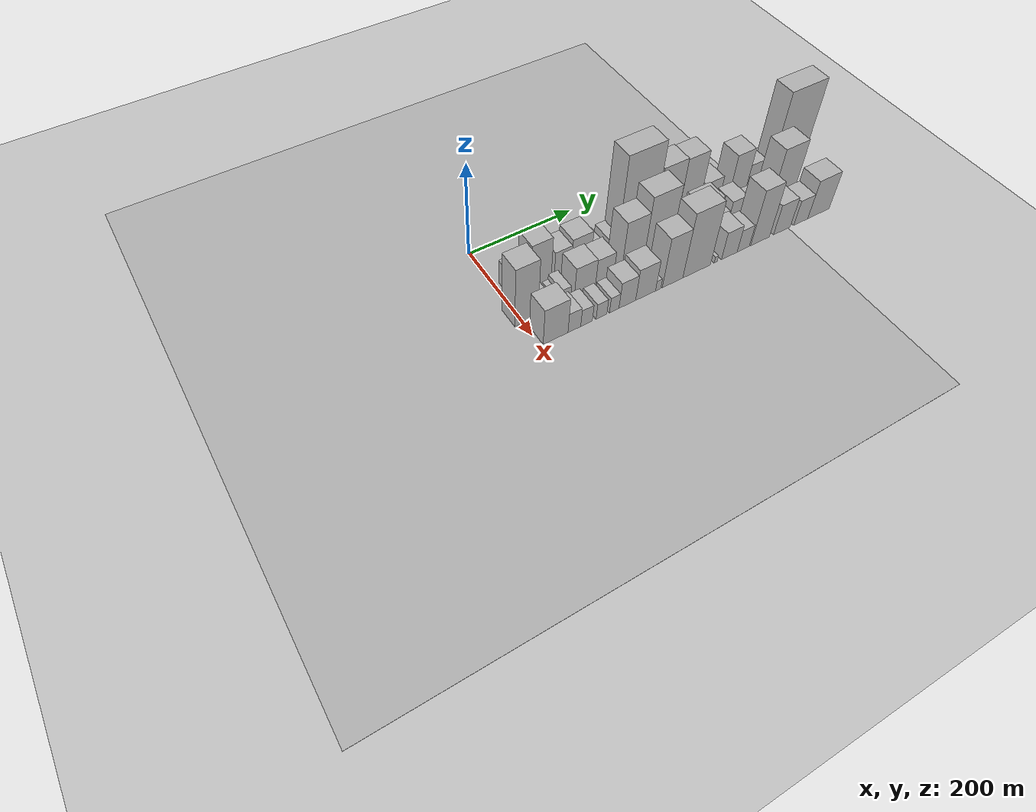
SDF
<sdf version="1.6">
 <world name="default">
  <include><name>ground_plane_1</name><uri>model://HANNAS_ground_plane</uri></include>
  <include>
   <name>ground_plane_2</name>
   <uri>model://HANNAS_ground_plane</uri>
   <pose>100 0 0  0 0 0</pose>
  </include>
  <model name="building_18">
   <static>1</static>
   <pose>100.0000 25.5710 0 0.000000 0.000000 0.000000</pose>
   <link name="link">
    <pose>0 0 27.00 0 0 0</pose>
    <collision name="collision"><geometry><box><size>40.0000 31.5603 54.0000</size></box></geometry></collision>
    <visual name="visual">
     <cast_shadows>0</cast_shadows>
     <geometry><box><size>40.0000 31.5603 54.0000</size></box></geometry>
     <material>
      <script>
       <uri>model://HANNAS_wall/materials/scripts</uri>
       <uri>model://HANNAS_wall/materials/textures</uri>
       <name>vrc/HANNAS_wall</name>
      </script>
     </material>
    </visual>
   </link>
  </model>
  <model name="building_19">
   <static>1</static>
   <pose>100.0000 65.7155 0 0.000000 0.000000 0.000000</pose>
   <link name="link">
    <pose>0 0 51.00 0 0 0</pose>
    <collision name="collision"><geometry><box><size>40.0000 38.7289 102.0000</size></box></geometry></collision>
    <visual name="visual">
     <cast_shadows>0</cast_shadows>
     <geometry><box><size>40.0000 38.7289 102.0000</size></box></geometry>
     <material>
      <script>
       <uri>model://HANNAS_wall/materials/scripts</uri>
       <uri>model://HANNAS_wall/materials/textures</uri>
       <name>vrc/HANNAS_wall</name>
      </script>
     </material>
    </visual>
   </link>
  </model>
  <model name="building_20">
   <static>1</static>
   <pose>100.0000 107.3781 0 0.000000 0.000000 0.000000</pose>
   <link name="link">
    <pose>0 0 31.50 0 0 0</pose>
    <collision name="collision"><geometry><box><size>40.0000 32.5962 63.0000</size></box></geometry></collision>
    <visual name="visual">
     <cast_shadows>0</cast_shadows>
     <geometry><box><size>40.0000 32.5962 63.0000</size></box></geometry>
     <material>
      <script>
       <uri>model://HANNAS_wall/materials/scripts</uri>
       <uri>model://HANNAS_wall/materials/textures</uri>
       <name>vrc/HANNAS_wall</name>
      </script>
     </material>
    </visual>
   </link>
  </model>
  <model name="building_21">
   <static>1</static>
   <pose>100.0000 143.3019 0 0.000000 0.000000 0.000000</pose>
   <link name="link">
    <pose>0 0 37.50 0 0 0</pose>
    <collision name="collision"><geometry><box><size>40.0000 39.2515 75.0000</size></box></geometry></collision>
    <visual name="visual">
     <cast_shadows>0</cast_shadows>
     <geometry><box><size>40.0000 39.2515 75.0000</size></box></geometry>
     <material>
      <script>
       <uri>model://HANNAS_wall/materials/scripts</uri>
       <uri>model://HANNAS_wall/materials/textures</uri>
       <name>vrc/HANNAS_wall</name>
      </script>
     </material>
    </visual>
   </link>
  </model>
  <model name="building_22">
   <static>1</static>
   <pose>100.0000 177.2840 0 0.000000 0.000000 0.000000</pose>
   <link name="link">
    <pose>0 0 18.00 0 0 0</pose>
    <collision name="collision"><geometry><box><size>40.0000 20.7128 36.0000</size></box></geometry></collision>
    <visual name="visual">
     <cast_shadows>0</cast_shadows>
     <geometry><box><size>40.0000 20.7128 36.0000</size></box></geometry>
     <material>
      <script>
       <uri>model://HANNAS_wall/materials/scripts</uri>
       <uri>model://HANNAS_wall/materials/textures</uri>
       <name>vrc/HANNAS_wall</name>
      </script>
     </material>
    </visual>
   </link>
  </model>
  <model name="building_23">
   <static>1</static>
   <pose>100.0000 205.4724 0 0.000000 0.000000 0.000000</pose>
   <link name="link">
    <pose>0 0 19.50 0 0 0</pose>
    <collision name="collision"><geometry><box><size>40.0000 19.6639 39.0000</size></box></geometry></collision>
    <visual name="visual">
     <cast_shadows>0</cast_shadows>
     <geometry><box><size>40.0000 19.6639 39.0000</size></box></geometry>
     <material>
      <script>
       <uri>model://HANNAS_wall/materials/scripts</uri>
       <uri>model://HANNAS_wall/materials/textures</uri>
       <name>vrc/HANNAS_wall</name>
      </script>
     </material>
    </visual>
   </link>
  </model>
  <model name="building_24">
   <static>1</static>
   <pose>100.0000 251.9849 0 0.000000 0.000000 0.000000</pose>
   <link name="link">
    <pose>0 0 105.00 0 0 0</pose>
    <collision name="collision"><geometry><box><size>40.0000 73.3611 210.0000</size></box></geometry></collision>
    <visual name="visual">
     <cast_shadows>0</cast_shadows>
     <geometry><box><size>40.0000 73.3611 210.0000</size></box></geometry>
     <material>
      <script>
       <uri>model://HANNAS_wall/materials/scripts</uri>
       <uri>model://HANNAS_wall/materials/textures</uri>
       <name>vrc/HANNAS_wall</name>
      </script>
     </material>
    </visual>
   </link>
  </model>
  <model name="building_25">
   <static>1</static>
   <pose>100.0000 315.9877 0 0.000000 0.000000 0.000000</pose>
   <link name="link">
    <pose>0 0 75.00 0 0 0</pose>
    <collision name="collision"><geometry><box><size>40.0000 48.6444 150.0000</size></box></geometry></collision>
    <visual name="visual">
     <cast_shadows>0</cast_shadows>
     <geometry><box><size>40.0000 48.6444 150.0000</size></box></geometry>
     <material>
      <script>
       <uri>model://HANNAS_wall/materials/scripts</uri>
       <uri>model://HANNAS_wall/materials/textures</uri>
       <name>vrc/HANNAS_wall</name>
      </script>
     </material>
    </visual>
   </link>
  </model>
  <model name="building_26">
   <static>1</static>
   <pose>100.0000 362.5225 0 0.000000 0.000000 0.000000</pose>
   <link name="link">
    <pose>0 0 73.50 0 0 0</pose>
    <collision name="collision"><geometry><box><size>40.0000 44.4252 147.0000</size></box></geometry></collision>
    <visual name="visual">
     <cast_shadows>0</cast_shadows>
     <geometry><box><size>40.0000 44.4252 147.0000</size></box></geometry>
     <material>
      <script>
       <uri>model://HANNAS_wall/materials/scripts</uri>
       <uri>model://HANNAS_wall/materials/textures</uri>
       <name>vrc/HANNAS_wall</name>
      </script>
     </material>
    </visual>
   </link>
  </model>
  <model name="building_27">
   <static>1</static>
   <pose>100.0000 388.2325 0 0.000000 0.000000 0.000000</pose>
   <link name="link">
    <pose>0 0 7.50 0 0 0</pose>
    <collision name="collision"><geometry><box><size>40.0000 6.9949 15.0000</size></box></geometry></collision>
    <visual name="visual">
     <cast_shadows>0</cast_shadows>
     <geometry><box><size>40.0000 6.9949 15.0000</size></box></geometry>
     <material>
      <script>
       <uri>model://HANNAS_wall/materials/scripts</uri>
       <uri>model://HANNAS_wall/materials/textures</uri>
       <name>vrc/HANNAS_wall</name>
      </script>
     </material>
    </visual>
   </link>
  </model>
  <model name="building_28">
   <static>1</static>
   <pose>100.0000 411.1243 0 0.000000 0.000000 0.000000</pose>
   <link name="link">
    <pose>0 0 34.50 0 0 0</pose>
    <collision name="collision"><geometry><box><size>40.0000 38.7887 69.0000</size></box></geometry></collision>
    <visual name="visual">
     <cast_shadows>0</cast_shadows>
     <geometry><box><size>40.0000 38.7887 69.0000</size></box></geometry>
     <material>
      <script>
       <uri>model://HANNAS_wall/materials/scripts</uri>
       <uri>model://HANNAS_wall/materials/textures</uri>
       <name>vrc/HANNAS_wall</name>
      </script>
     </material>
    </visual>
   </link>
  </model>
  <model name="building_29">
   <static>1</static>
   <pose>100.0000 446.5157 0 0.000000 0.000000 0.000000</pose>
   <link name="link">
    <pose>0 0 12.00 0 0 0</pose>
    <collision name="collision"><geometry><box><size>40.0000 11.9940 24.0000</size></box></geometry></collision>
    <visual name="visual">
     <cast_shadows>0</cast_shadows>
     <geometry><box><size>40.0000 11.9940 24.0000</size></box></geometry>
     <material>
      <script>
       <uri>model://HANNAS_wall/materials/scripts</uri>
       <uri>model://HANNAS_wall/materials/textures</uri>
       <name>vrc/HANNAS_wall</name>
      </script>
     </material>
    </visual>
   </link>
  </model>
  <model name="building_30">
   <static>1</static>
   <pose>100.0000 471.8779 0 0.000000 0.000000 0.000000</pose>
   <link name="link">
    <pose>0 0 52.50 0 0 0</pose>
    <collision name="collision"><geometry><box><size>40.0000 38.7305 105.0000</size></box></geometry></collision>
    <visual name="visual">
     <cast_shadows>0</cast_shadows>
     <geometry><box><size>40.0000 38.7305 105.0000</size></box></geometry>
     <material>
      <script>
       <uri>model://HANNAS_wall/materials/scripts</uri>
       <uri>model://HANNAS_wall/materials/textures</uri>
       <name>vrc/HANNAS_wall</name>
      </script>
     </material>
    </visual>
   </link>
  </model>
  <model name="building_31">
   <static>1</static>
   <pose>100.0000 507.8915 0 0.000000 0.000000 0.000000</pose>
   <link name="link">
    <pose>0 0 33.00 0 0 0</pose>
    <collision name="collision"><geometry><box><size>40.0000 33.2967 66.0000</size></box></geometry></collision>
    <visual name="visual">
     <cast_shadows>0</cast_shadows>
     <geometry><box><size>40.0000 33.2967 66.0000</size></box></geometry>
     <material>
      <script>
       <uri>model://HANNAS_wall/materials/scripts</uri>
       <uri>model://HANNAS_wall/materials/textures</uri>
       <name>vrc/HANNAS_wall</name>
      </script>
     </material>
    </visual>
   </link>
  </model>
  <model name="building_32">
   <static>1</static>
   <pose>100.0000 533.4100 0 0.000000 0.000000 0.000000</pose>
   <link name="link">
    <pose>0 0 15.00 0 0 0</pose>
    <collision name="collision"><geometry><box><size>40.0000 17.7402 30.0000</size></box></geometry></collision>
    <visual name="visual">
     <cast_shadows>0</cast_shadows>
     <geometry><box><size>40.0000 17.7402 30.0000</size></box></geometry>
     <material>
      <script>
       <uri>model://HANNAS_wall/materials/scripts</uri>
       <uri>model://HANNAS_wall/materials/textures</uri>
       <name>vrc/HANNAS_wall</name>
      </script>
     </material>
    </visual>
   </link>
  </model>
  <model name="building_33">
   <static>1</static>
   <pose>100.0000 581.3215 0 0.000000 0.000000 0.000000</pose>
   <link name="link">
    <pose>0 0 100.50 0 0 0</pose>
    <collision name="collision"><geometry><box><size>40.0000 78.0828 201.0000</size></box></geometry></collision>
    <visual name="visual">
     <cast_shadows>0</cast_shadows>
     <geometry><box><size>40.0000 78.0828 201.0000</size></box></geometry>
     <material>
      <script>
       <uri>model://HANNAS_wall/materials/scripts</uri>
       <uri>model://HANNAS_wall/materials/textures</uri>
       <name>vrc/HANNAS_wall</name>
      </script>
     </material>
    </visual>
   </link>
  </model>
  <model name="building_49">
   <static>1</static>
   <pose>152.0000 6.5699 0 0.000000 0.000000 0.000000</pose>
   <link name="link">
    <pose>0 0 66.00 0 0 0</pose>
    <collision name="collision"><geometry><box><size>40.0000 42.9942 132.0000</size></box></geometry></collision>
    <visual name="visual">
     <cast_shadows>0</cast_shadows>
     <geometry><box><size>40.0000 42.9942 132.0000</size></box></geometry>
     <material>
      <script>
       <uri>model://HANNAS_wall/materials/scripts</uri>
       <uri>model://HANNAS_wall/materials/textures</uri>
       <name>vrc/HANNAS_wall</name>
      </script>
     </material>
    </visual>
   </link>
  </model>
  <model name="building_50">
   <static>1</static>
   <pose>152.0000 44.9130 0 0.000000 0.000000 0.000000</pose>
   <link name="link">
    <pose>0 0 15.00 0 0 0</pose>
    <collision name="collision"><geometry><box><size>40.0000 17.6921 30.0000</size></box></geometry></collision>
    <visual name="visual">
     <cast_shadows>0</cast_shadows>
     <geometry><box><size>40.0000 17.6921 30.0000</size></box></geometry>
     <material>
      <script>
       <uri>model://HANNAS_wall/materials/scripts</uri>
       <uri>model://HANNAS_wall/materials/textures</uri>
       <name>vrc/HANNAS_wall</name>
      </script>
     </material>
    </visual>
   </link>
  </model>
  <model name="building_51">
   <static>1</static>
   <pose>152.0000 65.2904 0 0.000000 0.000000 0.000000</pose>
   <link name="link">
    <pose>0 0 12.00 0 0 0</pose>
    <collision name="collision"><geometry><box><size>40.0000 11.0626 24.0000</size></box></geometry></collision>
    <visual name="visual">
     <cast_shadows>0</cast_shadows>
     <geometry><box><size>40.0000 11.0626 24.0000</size></box></geometry>
     <material>
      <script>
       <uri>model://HANNAS_wall/materials/scripts</uri>
       <uri>model://HANNAS_wall/materials/textures</uri>
       <name>vrc/HANNAS_wall</name>
      </script>
     </material>
    </visual>
   </link>
  </model>
  <model name="building_52">
   <static>1</static>
   <pose>152.0000 79.8577 0 0.000000 0.000000 0.000000</pose>
   <link name="link">
    <pose>0 0 18.00 0 0 0</pose>
    <collision name="collision"><geometry><box><size>40.0000 18.0720 36.0000</size></box></geometry></collision>
    <visual name="visual">
     <cast_shadows>0</cast_shadows>
     <geometry><box><size>40.0000 18.0720 36.0000</size></box></geometry>
     <material>
      <script>
       <uri>model://HANNAS_wall/materials/scripts</uri>
       <uri>model://HANNAS_wall/materials/textures</uri>
       <name>vrc/HANNAS_wall</name>
      </script>
     </material>
    </visual>
   </link>
  </model>
  <model name="building_53">
   <static>1</static>
   <pose>152.0000 116.0636 0 0.000000 0.000000 0.000000</pose>
   <link name="link">
    <pose>0 0 36.00 0 0 0</pose>
    <collision name="collision"><geometry><box><size>40.0000 40.3400 72.0000</size></box></geometry></collision>
    <visual name="visual">
     <cast_shadows>0</cast_shadows>
     <geometry><box><size>40.0000 40.3400 72.0000</size></box></geometry>
     <material>
      <script>
       <uri>model://HANNAS_wall/materials/scripts</uri>
       <uri>model://HANNAS_wall/materials/textures</uri>
       <name>vrc/HANNAS_wall</name>
      </script>
     </material>
    </visual>
   </link>
  </model>
  <model name="building_54">
   <static>1</static>
   <pose>152.0000 153.8333 0 0.000000 0.000000 0.000000</pose>
   <link name="link">
    <pose>0 0 34.50 0 0 0</pose>
    <collision name="collision"><geometry><box><size>40.0000 35.1993 69.0000</size></box></geometry></collision>
    <visual name="visual">
     <cast_shadows>0</cast_shadows>
     <geometry><box><size>40.0000 35.1993 69.0000</size></box></geometry>
     <material>
      <script>
       <uri>model://HANNAS_wall/materials/scripts</uri>
       <uri>model://HANNAS_wall/materials/textures</uri>
       <name>vrc/HANNAS_wall</name>
      </script>
     </material>
    </visual>
   </link>
  </model>
  <model name="building_55">
   <static>1</static>
   <pose>152.0000 176.9388 0 0.000000 0.000000 0.000000</pose>
   <link name="link">
    <pose>0 0 12.00 0 0 0</pose>
    <collision name="collision"><geometry><box><size>40.0000 11.0118 24.0000</size></box></geometry></collision>
    <visual name="visual">
     <cast_shadows>0</cast_shadows>
     <geometry><box><size>40.0000 11.0118 24.0000</size></box></geometry>
     <material>
      <script>
       <uri>model://HANNAS_wall/materials/scripts</uri>
       <uri>model://HANNAS_wall/materials/textures</uri>
       <name>vrc/HANNAS_wall</name>
      </script>
     </material>
    </visual>
   </link>
  </model>
  <model name="building_56">
   <static>1</static>
   <pose>152.0000 208.4596 0 0.000000 0.000000 0.000000</pose>
   <link name="link">
    <pose>0 0 63.00 0 0 0</pose>
    <collision name="collision"><geometry><box><size>40.0000 44.0297 126.0000</size></box></geometry></collision>
    <visual name="visual">
     <cast_shadows>0</cast_shadows>
     <geometry><box><size>40.0000 44.0297 126.0000</size></box></geometry>
     <material>
      <script>
       <uri>model://HANNAS_wall/materials/scripts</uri>
       <uri>model://HANNAS_wall/materials/textures</uri>
       <name>vrc/HANNAS_wall</name>
      </script>
     </material>
    </visual>
   </link>
  </model>
  <model name="building_57">
   <static>1</static>
   <pose>152.0000 258.8494 0 0.000000 0.000000 0.000000</pose>
   <link name="link">
    <pose>0 0 79.50 0 0 0</pose>
    <collision name="collision"><geometry><box><size>40.0000 56.7500 159.0000</size></box></geometry></collision>
    <visual name="visual">
     <cast_shadows>0</cast_shadows>
     <geometry><box><size>40.0000 56.7500 159.0000</size></box></geometry>
     <material>
      <script>
       <uri>model://HANNAS_wall/materials/scripts</uri>
       <uri>model://HANNAS_wall/materials/textures</uri>
       <name>vrc/HANNAS_wall</name>
      </script>
     </material>
    </visual>
   </link>
  </model>
  <model name="building_58">
   <static>1</static>
   <pose>152.0000 303.0608 0 0.000000 0.000000 0.000000</pose>
   <link name="link">
    <pose>0 0 13.50 0 0 0</pose>
    <collision name="collision"><geometry><box><size>40.0000 11.6728 27.0000</size></box></geometry></collision>
    <visual name="visual">
     <cast_shadows>0</cast_shadows>
     <geometry><box><size>40.0000 11.6728 27.0000</size></box></geometry>
     <material>
      <script>
       <uri>model://HANNAS_wall/materials/scripts</uri>
       <uri>model://HANNAS_wall/materials/textures</uri>
       <name>vrc/HANNAS_wall</name>
      </script>
     </material>
    </visual>
   </link>
  </model>
  <model name="building_59">
   <static>1</static>
   <pose>152.0000 312.2449 0 0.000000 0.000000 0.000000</pose>
   <link name="link">
    <pose>0 0 7.50 0 0 0</pose>
    <collision name="collision"><geometry><box><size>40.0000 6.6955 15.0000</size></box></geometry></collision>
    <visual name="visual">
     <cast_shadows>0</cast_shadows>
     <geometry><box><size>40.0000 6.6955 15.0000</size></box></geometry>
     <material>
      <script>
       <uri>model://HANNAS_wall/materials/scripts</uri>
       <uri>model://HANNAS_wall/materials/textures</uri>
       <name>vrc/HANNAS_wall</name>
      </script>
     </material>
    </visual>
   </link>
  </model>
  <model name="building_60">
   <static>1</static>
   <pose>152.0000 327.0009 0 0.000000 0.000000 0.000000</pose>
   <link name="link">
    <pose>0 0 22.50 0 0 0</pose>
    <collision name="collision"><geometry><box><size>40.0000 22.8165 45.0000</size></box></geometry></collision>
    <visual name="visual">
     <cast_shadows>0</cast_shadows>
     <geometry><box><size>40.0000 22.8165 45.0000</size></box></geometry>
     <material>
      <script>
       <uri>model://HANNAS_wall/materials/scripts</uri>
       <uri>model://HANNAS_wall/materials/textures</uri>
       <name>vrc/HANNAS_wall</name>
      </script>
     </material>
    </visual>
   </link>
  </model>
  <model name="building_61">
   <static>1</static>
   <pose>152.0000 362.2058 0 0.000000 0.000000 0.000000</pose>
   <link name="link">
    <pose>0 0 43.50 0 0 0</pose>
    <collision name="collision"><geometry><box><size>40.0000 47.5934 87.0000</size></box></geometry></collision>
    <visual name="visual">
     <cast_shadows>0</cast_shadows>
     <geometry><box><size>40.0000 47.5934 87.0000</size></box></geometry>
     <material>
      <script>
       <uri>model://HANNAS_wall/materials/scripts</uri>
       <uri>model://HANNAS_wall/materials/textures</uri>
       <name>vrc/HANNAS_wall</name>
      </script>
     </material>
    </visual>
   </link>
  </model>
  <model name="building_62">
   <static>1</static>
   <pose>152.0000 396.8749 0 0.000000 0.000000 0.000000</pose>
   <link name="link">
    <pose>0 0 21.00 0 0 0</pose>
    <collision name="collision"><geometry><box><size>40.0000 21.7447 42.0000</size></box></geometry></collision>
    <visual name="visual">
     <cast_shadows>0</cast_shadows>
     <geometry><box><size>40.0000 21.7447 42.0000</size></box></geometry>
     <material>
      <script>
       <uri>model://HANNAS_wall/materials/scripts</uri>
       <uri>model://HANNAS_wall/materials/textures</uri>
       <name>vrc/HANNAS_wall</name>
      </script>
     </material>
    </visual>
   </link>
  </model>
  <model name="building_63">
   <static>1</static>
   <pose>152.0000 423.7378 0 0.000000 0.000000 0.000000</pose>
   <link name="link">
    <pose>0 0 31.50 0 0 0</pose>
    <collision name="collision"><geometry><box><size>40.0000 31.9811 63.0000</size></box></geometry></collision>
    <visual name="visual">
     <cast_shadows>0</cast_shadows>
     <geometry><box><size>40.0000 31.9811 63.0000</size></box></geometry>
     <material>
      <script>
       <uri>model://HANNAS_wall/materials/scripts</uri>
       <uri>model://HANNAS_wall/materials/textures</uri>
       <name>vrc/HANNAS_wall</name>
      </script>
     </material>
    </visual>
   </link>
  </model>
  <model name="building_64">
   <static>1</static>
   <pose>152.0000 448.6195 0 0.000000 0.000000 0.000000</pose>
   <link name="link">
    <pose>0 0 13.50 0 0 0</pose>
    <collision name="collision"><geometry><box><size>40.0000 11.7822 27.0000</size></box></geometry></collision>
    <visual name="visual">
     <cast_shadows>0</cast_shadows>
     <geometry><box><size>40.0000 11.7822 27.0000</size></box></geometry>
     <material>
      <script>
       <uri>model://HANNAS_wall/materials/scripts</uri>
       <uri>model://HANNAS_wall/materials/textures</uri>
       <name>vrc/HANNAS_wall</name>
      </script>
     </material>
    </visual>
   </link>
  </model>
  <model name="building_65">
   <static>1</static>
   <pose>152.0000 471.2386 0 0.000000 0.000000 0.000000</pose>
   <link name="link">
    <pose>0 0 18.00 0 0 0</pose>
    <collision name="collision"><geometry><box><size>40.0000 21.4561 36.0000</size></box></geometry></collision>
    <visual name="visual">
     <cast_shadows>0</cast_shadows>
     <geometry><box><size>40.0000 21.4561 36.0000</size></box></geometry>
     <material>
      <script>
       <uri>model://HANNAS_wall/materials/scripts</uri>
       <uri>model://HANNAS_wall/materials/textures</uri>
       <name>vrc/HANNAS_wall</name>
      </script>
     </material>
    </visual>
   </link>
  </model>
  <model name="building_66">
   <static>1</static>
   <pose>152.0000 492.7395 0 0.000000 0.000000 0.000000</pose>
   <link name="link">
    <pose>0 0 10.50 0 0 0</pose>
    <collision name="collision"><geometry><box><size>40.0000 9.5457 21.0000</size></box></geometry></collision>
    <visual name="visual">
     <cast_shadows>0</cast_shadows>
     <geometry><box><size>40.0000 9.5457 21.0000</size></box></geometry>
     <material>
      <script>
       <uri>model://HANNAS_wall/materials/scripts</uri>
       <uri>model://HANNAS_wall/materials/textures</uri>
       <name>vrc/HANNAS_wall</name>
      </script>
     </material>
    </visual>
   </link>
  </model>
  <model name="building_67">
   <static>1</static>
   <pose>152.0000 527.9840 0 0.000000 0.000000 0.000000</pose>
   <link name="link">
    <pose>0 0 67.50 0 0 0</pose>
    <collision name="collision"><geometry><box><size>40.0000 50.9434 135.0000</size></box></geometry></collision>
    <visual name="visual">
     <cast_shadows>0</cast_shadows>
     <geometry><box><size>40.0000 50.9434 135.0000</size></box></geometry>
     <material>
      <script>
       <uri>model://HANNAS_wall/materials/scripts</uri>
       <uri>model://HANNAS_wall/materials/textures</uri>
       <name>vrc/HANNAS_wall</name>
      </script>
     </material>
    </visual>
   </link>
  </model>
  <model name="building_89">
   <static>1</static>
   <pose>204.0000 27.5929 0 0.000000 0.000000 0.000000</pose>
   <link name="link">
    <pose>0 0 40.50 0 0 0</pose>
    <collision name="collision"><geometry><box><size>40.0000 45.4122 81.0000</size></box></geometry></collision>
    <visual name="visual">
     <cast_shadows>0</cast_shadows>
     <geometry><box><size>40.0000 45.4122 81.0000</size></box></geometry>
     <material>
      <script>
       <uri>model://HANNAS_wall/materials/scripts</uri>
       <uri>model://HANNAS_wall/materials/textures</uri>
       <name>vrc/HANNAS_wall</name>
      </script>
     </material>
    </visual>
   </link>
  </model>
  <model name="building_90">
   <static>1</static>
   <pose>204.0000 62.1825 0 0.000000 0.000000 0.000000</pose>
   <link name="link">
    <pose>0 0 22.50 0 0 0</pose>
    <collision name="collision"><geometry><box><size>40.0000 23.7669 45.0000</size></box></geometry></collision>
    <visual name="visual">
     <cast_shadows>0</cast_shadows>
     <geometry><box><size>40.0000 23.7669 45.0000</size></box></geometry>
     <material>
      <script>
       <uri>model://HANNAS_wall/materials/scripts</uri>
       <uri>model://HANNAS_wall/materials/textures</uri>
       <name>vrc/HANNAS_wall</name>
      </script>
     </material>
    </visual>
   </link>
  </model>
  <model name="building_91">
   <static>1</static>
   <pose>204.0000 85.0063 0 0.000000 0.000000 0.000000</pose>
   <link name="link">
    <pose>0 0 19.50 0 0 0</pose>
    <collision name="collision"><geometry><box><size>40.0000 21.8808 39.0000</size></box></geometry></collision>
    <visual name="visual">
     <cast_shadows>0</cast_shadows>
     <geometry><box><size>40.0000 21.8808 39.0000</size></box></geometry>
     <material>
      <script>
       <uri>model://HANNAS_wall/materials/scripts</uri>
       <uri>model://HANNAS_wall/materials/textures</uri>
       <name>vrc/HANNAS_wall</name>
      </script>
     </material>
    </visual>
   </link>
  </model>
  <model name="building_92">
   <static>1</static>
   <pose>204.0000 113.2065 0 0.000000 0.000000 0.000000</pose>
   <link name="link">
    <pose>0 0 18.00 0 0 0</pose>
    <collision name="collision"><geometry><box><size>40.0000 20.5196 36.0000</size></box></geometry></collision>
    <visual name="visual">
     <cast_shadows>0</cast_shadows>
     <geometry><box><size>40.0000 20.5196 36.0000</size></box></geometry>
     <material>
      <script>
       <uri>model://HANNAS_wall/materials/scripts</uri>
       <uri>model://HANNAS_wall/materials/textures</uri>
       <name>vrc/HANNAS_wall</name>
      </script>
     </material>
    </visual>
   </link>
  </model>
  <model name="building_93">
   <static>1</static>
   <pose>204.0000 137.5691 0 0.000000 0.000000 0.000000</pose>
   <link name="link">
    <pose>0 0 18.00 0 0 0</pose>
    <collision name="collision"><geometry><box><size>40.0000 18.2056 36.0000</size></box></geometry></collision>
    <visual name="visual">
     <cast_shadows>0</cast_shadows>
     <geometry><box><size>40.0000 18.2056 36.0000</size></box></geometry>
     <material>
      <script>
       <uri>model://HANNAS_wall/materials/scripts</uri>
       <uri>model://HANNAS_wall/materials/textures</uri>
       <name>vrc/HANNAS_wall</name>
      </script>
     </material>
    </visual>
   </link>
  </model>
  <model name="building_94">
   <static>1</static>
   <pose>204.0000 162.9406 0 0.000000 0.000000 0.000000</pose>
   <link name="link">
    <pose>0 0 30.00 0 0 0</pose>
    <collision name="collision"><geometry><box><size>40.0000 32.5374 60.0000</size></box></geometry></collision>
    <visual name="visual">
     <cast_shadows>0</cast_shadows>
     <geometry><box><size>40.0000 32.5374 60.0000</size></box></geometry>
     <material>
      <script>
       <uri>model://HANNAS_wall/materials/scripts</uri>
       <uri>model://HANNAS_wall/materials/textures</uri>
       <name>vrc/HANNAS_wall</name>
      </script>
     </material>
    </visual>
   </link>
  </model>
  <model name="building_95">
   <static>1</static>
   <pose>204.0000 198.9019 0 0.000000 0.000000 0.000000</pose>
   <link name="link">
    <pose>0 0 36.00 0 0 0</pose>
    <collision name="collision"><geometry><box><size>40.0000 39.3852 72.0000</size></box></geometry></collision>
    <visual name="visual">
     <cast_shadows>0</cast_shadows>
     <geometry><box><size>40.0000 39.3852 72.0000</size></box></geometry>
     <material>
      <script>
       <uri>model://HANNAS_wall/materials/scripts</uri>
       <uri>model://HANNAS_wall/materials/textures</uri>
       <name>vrc/HANNAS_wall</name>
      </script>
     </material>
    </visual>
   </link>
  </model>
  <model name="building_96">
   <static>1</static>
   <pose>204.0000 223.8638 0 0.000000 0.000000 0.000000</pose>
   <link name="link">
    <pose>0 0 12.00 0 0 0</pose>
    <collision name="collision"><geometry><box><size>40.0000 10.5386 24.0000</size></box></geometry></collision>
    <visual name="visual">
     <cast_shadows>0</cast_shadows>
     <geometry><box><size>40.0000 10.5386 24.0000</size></box></geometry>
     <material>
      <script>
       <uri>model://HANNAS_wall/materials/scripts</uri>
       <uri>model://HANNAS_wall/materials/textures</uri>
       <name>vrc/HANNAS_wall</name>
      </script>
     </material>
    </visual>
   </link>
  </model>
  <model name="building_97">
   <static>1</static>
   <pose>204.0000 252.9284 0 0.000000 0.000000 0.000000</pose>
   <link name="link">
    <pose>0 0 57.00 0 0 0</pose>
    <collision name="collision"><geometry><box><size>40.0000 41.5904 114.0000</size></box></geometry></collision>
    <visual name="visual">
     <cast_shadows>0</cast_shadows>
     <geometry><box><size>40.0000 41.5904 114.0000</size></box></geometry>
     <material>
      <script>
       <uri>model://HANNAS_wall/materials/scripts</uri>
       <uri>model://HANNAS_wall/materials/textures</uri>
       <name>vrc/HANNAS_wall</name>
      </script>
     </material>
    </visual>
   </link>
  </model>
  <model name="building_98">
   <static>1</static>
   <pose>204.0000 302.2851 0 0.000000 0.000000 0.000000</pose>
   <link name="link">
    <pose>0 0 73.50 0 0 0</pose>
    <collision name="collision"><geometry><box><size>40.0000 57.1231 147.0000</size></box></geometry></collision>
    <visual name="visual">
     <cast_shadows>0</cast_shadows>
     <geometry><box><size>40.0000 57.1231 147.0000</size></box></geometry>
     <material>
      <script>
       <uri>model://HANNAS_wall/materials/scripts</uri>
       <uri>model://HANNAS_wall/materials/textures</uri>
       <name>vrc/HANNAS_wall</name>
      </script>
     </material>
    </visual>
   </link>
  </model>
  <model name="building_99">
   <static>1</static>
   <pose>204.0000 341.9948 0 0.000000 0.000000 0.000000</pose>
   <link name="link">
    <pose>0 0 7.50 0 0 0</pose>
    <collision name="collision"><geometry><box><size>40.0000 6.2962 15.0000</size></box></geometry></collision>
    <visual name="visual">
     <cast_shadows>0</cast_shadows>
     <geometry><box><size>40.0000 6.2962 15.0000</size></box></geometry>
     <material>
      <script>
       <uri>model://HANNAS_wall/materials/scripts</uri>
       <uri>model://HANNAS_wall/materials/textures</uri>
       <name>vrc/HANNAS_wall</name>
      </script>
     </material>
    </visual>
   </link>
  </model>
  <model name="building_100">
   <static>1</static>
   <pose>204.0000 370.9052 0 0.000000 0.000000 0.000000</pose>
   <link name="link">
    <pose>0 0 31.50 0 0 0</pose>
    <collision name="collision"><geometry><box><size>40.0000 33.5244 63.0000</size></box></geometry></collision>
    <visual name="visual">
     <cast_shadows>0</cast_shadows>
     <geometry><box><size>40.0000 33.5244 63.0000</size></box></geometry>
     <material>
      <script>
       <uri>model://HANNAS_wall/materials/scripts</uri>
       <uri>model://HANNAS_wall/materials/textures</uri>
       <name>vrc/HANNAS_wall</name>
      </script>
     </material>
    </visual>
   </link>
  </model>
  <model name="building_101">
   <static>1</static>
   <pose>204.0000 400.6590 0 0.000000 0.000000 0.000000</pose>
   <link name="link">
    <pose>0 0 25.50 0 0 0</pose>
    <collision name="collision"><geometry><box><size>40.0000 25.9834 51.0000</size></box></geometry></collision>
    <visual name="visual">
     <cast_shadows>0</cast_shadows>
     <geometry><box><size>40.0000 25.9834 51.0000</size></box></geometry>
     <material>
      <script>
       <uri>model://HANNAS_wall/materials/scripts</uri>
       <uri>model://HANNAS_wall/materials/textures</uri>
       <name>vrc/HANNAS_wall</name>
      </script>
     </material>
    </visual>
   </link>
  </model>
  <model name="building_102">
   <static>1</static>
   <pose>204.0000 437.2998 0 0.000000 0.000000 0.000000</pose>
   <link name="link">
    <pose>0 0 63.00 0 0 0</pose>
    <collision name="collision"><geometry><box><size>40.0000 41.2980 126.0000</size></box></geometry></collision>
    <visual name="visual">
     <cast_shadows>0</cast_shadows>
     <geometry><box><size>40.0000 41.2980 126.0000</size></box></geometry>
     <material>
      <script>
       <uri>model://HANNAS_wall/materials/scripts</uri>
       <uri>model://HANNAS_wall/materials/textures</uri>
       <name>vrc/HANNAS_wall</name>
      </script>
     </material>
    </visual>
   </link>
  </model>
  <model name="building_103">
   <static>1</static>
   <pose>204.0000 485.7233 0 0.000000 0.000000 0.000000</pose>
   <link name="link">
    <pose>0 0 34.50 0 0 0</pose>
    <collision name="collision"><geometry><box><size>40.0000 37.5490 69.0000</size></box></geometry></collision>
    <visual name="visual">
     <cast_shadows>0</cast_shadows>
     <geometry><box><size>40.0000 37.5490 69.0000</size></box></geometry>
     <material>
      <script>
       <uri>model://HANNAS_wall/materials/scripts</uri>
       <uri>model://HANNAS_wall/materials/textures</uri>
       <name>vrc/HANNAS_wall</name>
      </script>
     </material>
    </visual>
   </link>
  </model>
  <model name="building_104">
   <static>1</static>
   <pose>204.0000 528.3039 0 0.000000 0.000000 0.000000</pose>
   <link name="link">
    <pose>0 0 28.50 0 0 0</pose>
    <collision name="collision"><geometry><box><size>40.0000 31.6123 57.0000</size></box></geometry></collision>
    <visual name="visual">
     <cast_shadows>0</cast_shadows>
     <geometry><box><size>40.0000 31.6123 57.0000</size></box></geometry>
     <material>
      <script>
       <uri>model://HANNAS_wall/materials/scripts</uri>
       <uri>model://HANNAS_wall/materials/textures</uri>
       <name>vrc/HANNAS_wall</name>
      </script>
     </material>
    </visual>
   </link>
  </model>
  <model name="building_105">
   <static>1</static>
   <pose>204.0000 568.8019 0 0.000000 0.000000 0.000000</pose>
   <link name="link">
    <pose>0 0 43.50 0 0 0</pose>
    <collision name="collision"><geometry><box><size>40.0000 49.3835 87.0000</size></box></geometry></collision>
    <visual name="visual">
     <cast_shadows>0</cast_shadows>
     <geometry><box><size>40.0000 49.3835 87.0000</size></box></geometry>
     <material>
      <script>
       <uri>model://HANNAS_wall/materials/scripts</uri>
       <uri>model://HANNAS_wall/materials/textures</uri>
       <name>vrc/HANNAS_wall</name>
      </script>
     </material>
    </visual>
   </link>
  </model>
 </world>
</sdf>
